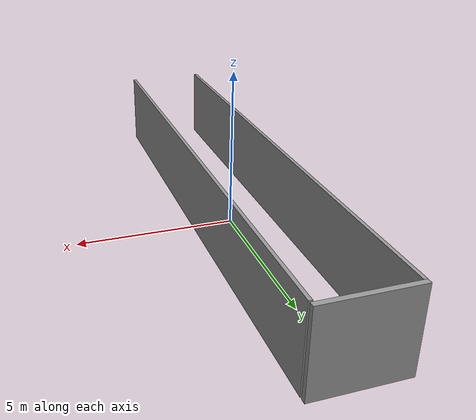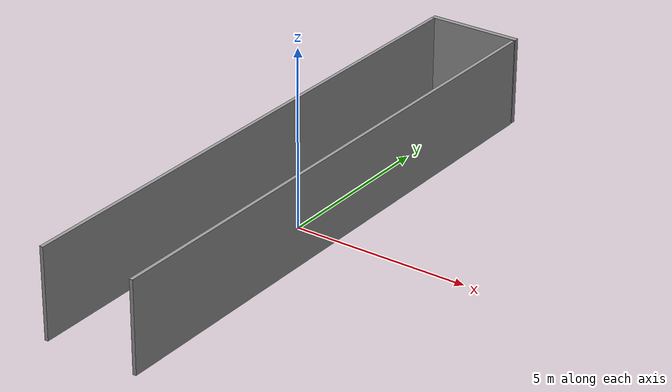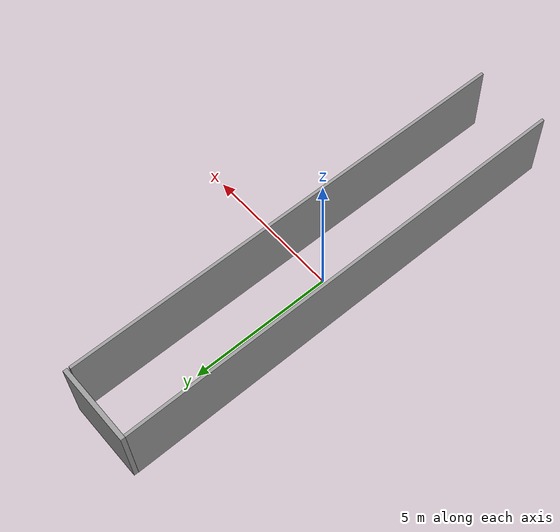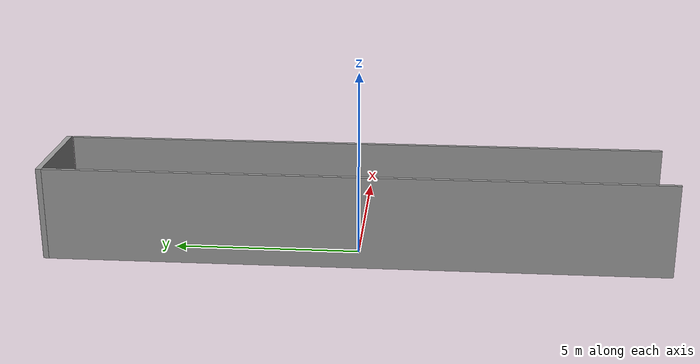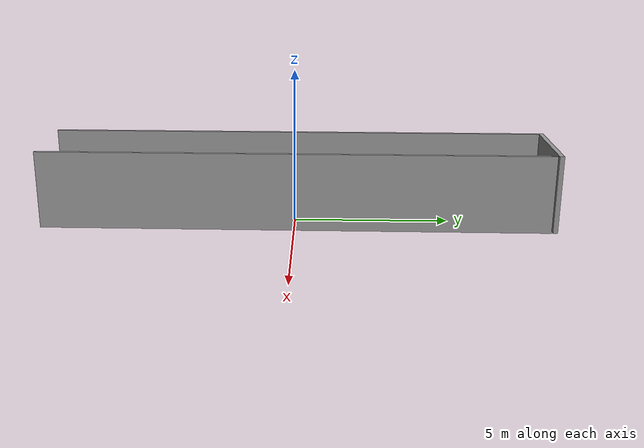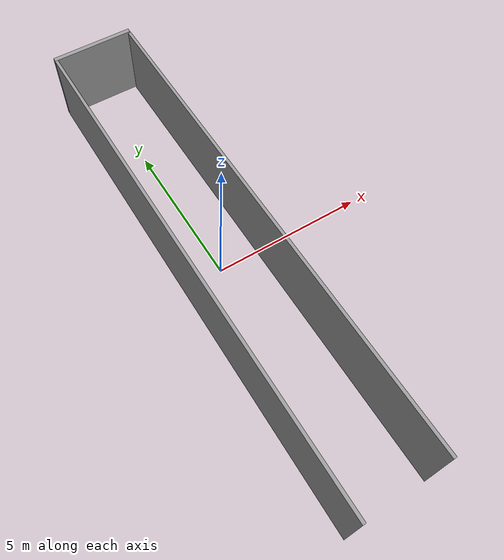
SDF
<?xml version='1.0'?>
<sdf version='1.6'>
  <model name='Truck'>
    <link name='Wall_0'>
      <pose frame=''>-1.3073 0 0 0 0 -1.5708</pose>
      <self_collide>0</self_collide>
      <enable_wind>0</enable_wind>
      <kinematic>0</kinematic>
      <gravity>1</gravity>
      <inertial>
        <mass>1</mass>
        <pose frame=''>0 0 0 0 -0 0</pose>
        <inertia>
          <ixx>1</ixx>
          <ixy>0</ixy>
          <ixz>0</ixz>
          <iyy>1</iyy>
          <iyz>0</iyz>
          <izz>1</izz>
        </inertia>
      </inertial>
      <visual name='Wall_0_Visual'>
        <pose frame=''>0 0 1.4 0 -0 0</pose>
        <geometry>
          <box>
            <size>16.2358 0.1 2.5</size>
          </box>
        </geometry>
        <material>
          <script>
            <uri>file://media/materials/scripts/gazebo.material</uri>
            <name>Gazebo/Grey</name>
          </script>
          <ambient>1 1 1 1</ambient>
          <shader type='vertex'>
            <normal_map>__default__</normal_map>
          </shader>
          <diffuse>0.7 0.7 0.7 1</diffuse>
          <specular>0.01 0.01 0.01 1</specular>
          <emissive>0 0 0 1</emissive>
        </material>
        <meta>
          <layer>0</layer>
        </meta>
        <transparency>0</transparency>
        <cast_shadows>1</cast_shadows>
      </visual>
      <collision name='Wall_0_Collision'>
        <laser_retro>0</laser_retro>
        <max_contacts>10</max_contacts>
        <pose frame=''>0 0 1.4 0 -0 0</pose>
        <geometry>
          <box>
            <size>16.14 0.1 2.5</size>
          </box>
        </geometry>
        <surface>
          <friction>
            <ode>
              <mu>1</mu>
              <mu2>1</mu2>
              <fdir1>0 0 0</fdir1>
              <slip1>0</slip1>
              <slip2>0</slip2>
            </ode>
            <torsional>
              <coefficient>1</coefficient>
              <patch_radius>0</patch_radius>
              <surface_radius>0</surface_radius>
              <use_patch_radius>1</use_patch_radius>
              <ode>
                <slip>0</slip>
              </ode>
            </torsional>
          </friction>
          <bounce>
            <restitution_coefficient>0</restitution_coefficient>
            <threshold>1e+06</threshold>
          </bounce>
          <contact>
            <collide_without_contact>0</collide_without_contact>
            <collide_without_contact_bitmask>1</collide_without_contact_bitmask>
            <collide_bitmask>1</collide_bitmask>
            <ode>
              <soft_cfm>0</soft_cfm>
              <soft_erp>0.2</soft_erp>
              <kp>1e+13</kp>
              <kd>1</kd>
              <max_vel>0.01</max_vel>
              <min_depth>0</min_depth>
            </ode>
            <bullet>
              <split_impulse>1</split_impulse>
              <split_impulse_penetration_threshold>-0.01</split_impulse_penetration_threshold>
              <soft_cfm>0</soft_cfm>
              <soft_erp>0.2</soft_erp>
              <kp>1e+13</kp>
              <kd>1</kd>
            </bullet>
          </contact>
        </surface>
      </collision>
    </link>
    <link name='Wall_2'>
      <pose frame=''>0 8.193 0 0 -0 3.14159</pose>
      <self_collide>0</self_collide>
      <enable_wind>0</enable_wind>
      <kinematic>0</kinematic>
      <gravity>1</gravity>
      <inertial>
        <mass>1</mass>
        <pose frame=''>0 0 0 0 -0 0</pose>
        <inertia>
          <ixx>1</ixx>
          <ixy>0</ixy>
          <ixz>0</ixz>
          <iyy>1</iyy>
          <iyz>0</iyz>
          <izz>1</izz>
        </inertia>
      </inertial>
      <visual name='Wall_2_Visual'>
        <pose frame=''>0 0 1.4 0 -0 0</pose>
        <geometry>
          <box>
            <size>2.7 0.15 2.5</size>
          </box>
        </geometry>
        <material>
          <script>
            <uri>file://media/materials/scripts/gazebo.material</uri>
            <name>Gazebo/Grey</name>
          </script>
          <ambient>1 1 1 1</ambient>
          <shader type='vertex'>
            <normal_map>__default__</normal_map>
          </shader>
          <diffuse>0.7 0.7 0.7 1</diffuse>
          <specular>0.01 0.01 0.01 1</specular>
          <emissive>0 0 0 1</emissive>
        </material>
        <meta>
          <layer>0</layer>
        </meta>
        <transparency>0</transparency>
        <cast_shadows>1</cast_shadows>
      </visual>
      <collision name='Wall_2_Collision'>
        <laser_retro>0</laser_retro>
        <max_contacts>10</max_contacts>
        <pose frame=''>0 0 1.4 0 -0 0</pose>
        <geometry>
          <box>
            <size>2.7 0.15 2.5</size>
          </box>
        </geometry>
        <surface>
          <friction>
            <ode>
              <mu>1</mu>
              <mu2>1</mu2>
              <fdir1>0 0 0</fdir1>
              <slip1>0</slip1>
              <slip2>0</slip2>
            </ode>
            <torsional>
              <coefficient>1</coefficient>
              <patch_radius>0</patch_radius>
              <surface_radius>0</surface_radius>
              <use_patch_radius>1</use_patch_radius>
              <ode>
                <slip>0</slip>
              </ode>
            </torsional>
          </friction>
          <bounce>
            <restitution_coefficient>0</restitution_coefficient>
            <threshold>1e+06</threshold>
          </bounce>
          <contact>
            <collide_without_contact>0</collide_without_contact>
            <collide_without_contact_bitmask>1</collide_without_contact_bitmask>
            <collide_bitmask>1</collide_bitmask>
            <ode>
              <soft_cfm>0</soft_cfm>
              <soft_erp>0.2</soft_erp>
              <kp>1e+13</kp>
              <kd>1</kd>
              <max_vel>0.01</max_vel>
              <min_depth>0</min_depth>
            </ode>
            <bullet>
              <split_impulse>1</split_impulse>
              <split_impulse_penetration_threshold>-0.01</split_impulse_penetration_threshold>
              <soft_cfm>0</soft_cfm>
              <soft_erp>0.2</soft_erp>
              <kp>1e+13</kp>
              <kd>1</kd>
            </bullet>
          </contact>
        </surface>
      </collision>
    </link>
    <link name='Wall_6'>
      <pose frame=''>1.3073 0 0 0 0 -1.5708</pose>
      <self_collide>0</self_collide>
      <enable_wind>0</enable_wind>
      <kinematic>0</kinematic>
      <gravity>1</gravity>
      <inertial>
        <mass>1</mass>
        <pose frame=''>0 0 0 0 -0 0</pose>
        <inertia>
          <ixx>1</ixx>
          <ixy>0</ixy>
          <ixz>0</ixz>
          <iyy>1</iyy>
          <iyz>0</iyz>
          <izz>1</izz>
        </inertia>
      </inertial>
      <visual name='Wall_6_Visual'>
        <pose frame=''>0 0 1.4 0 -0 0</pose>
        <geometry>
          <box>
            <size>16.14 0.1 2.5</size>
          </box>
        </geometry>
        <material>
          <script>
            <uri>file://media/materials/scripts/gazebo.material</uri>
            <name>Gazebo/Grey</name>
          </script>
          <ambient>1 1 1 1</ambient>
          <shader type='vertex'>
            <normal_map>__default__</normal_map>
          </shader>
          <diffuse>0.7 0.7 0.7 1</diffuse>
          <specular>0.01 0.01 0.01 1</specular>
          <emissive>0 0 0 1</emissive>
        </material>
        <meta>
          <layer>0</layer>
        </meta>
        <transparency>0</transparency>
        <cast_shadows>1</cast_shadows>
      </visual>
      <collision name='Wall_6_Collision'>
        <laser_retro>0</laser_retro>
        <max_contacts>10</max_contacts>
        <pose frame=''>0 0 1.4 0 -0 0</pose>
        <geometry>
          <box>
            <size>16.14 0.1 2.5</size>
          </box>
        </geometry>
        <surface>
          <friction>
            <ode>
              <mu>1</mu>
              <mu2>1</mu2>
              <fdir1>0 0 0</fdir1>
              <slip1>0</slip1>
              <slip2>0</slip2>
            </ode>
            <torsional>
              <coefficient>1</coefficient>
              <patch_radius>0</patch_radius>
              <surface_radius>0</surface_radius>
              <use_patch_radius>1</use_patch_radius>
              <ode>
                <slip>0</slip>
              </ode>
            </torsional>
          </friction>
          <bounce>
            <restitution_coefficient>0</restitution_coefficient>
            <threshold>1e+06</threshold>
          </bounce>
          <contact>
            <collide_without_contact>0</collide_without_contact>
            <collide_without_contact_bitmask>1</collide_without_contact_bitmask>
            <collide_bitmask>1</collide_bitmask>
            <ode>
              <soft_cfm>0</soft_cfm>
              <soft_erp>0.2</soft_erp>
              <kp>1e+13</kp>
              <kd>1</kd>
              <max_vel>0.01</max_vel>
              <min_depth>0</min_depth>
            </ode>
            <bullet>
              <split_impulse>1</split_impulse>
              <split_impulse_penetration_threshold>-0.01</split_impulse_penetration_threshold>
              <soft_cfm>0</soft_cfm>
              <soft_erp>0.2</soft_erp>
              <kp>1e+13</kp>
              <kd>1</kd>
            </bullet>
          </contact>
        </surface>
      </collision>
    </link>
    <static>1</static>
    <allow_auto_disable>1</allow_auto_disable>
  </model>
</sdf>
